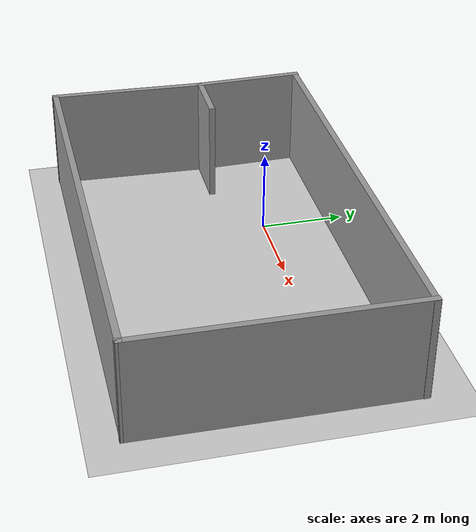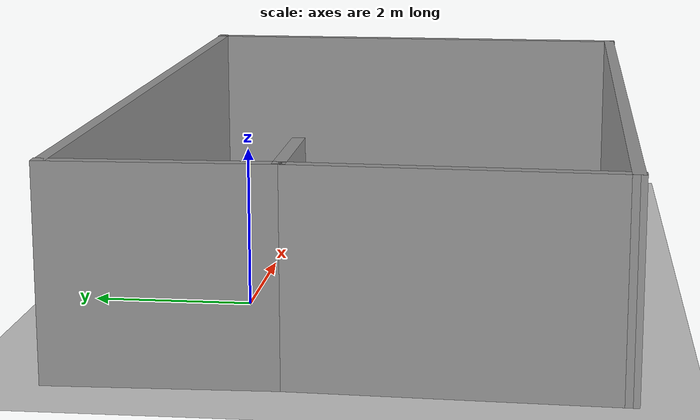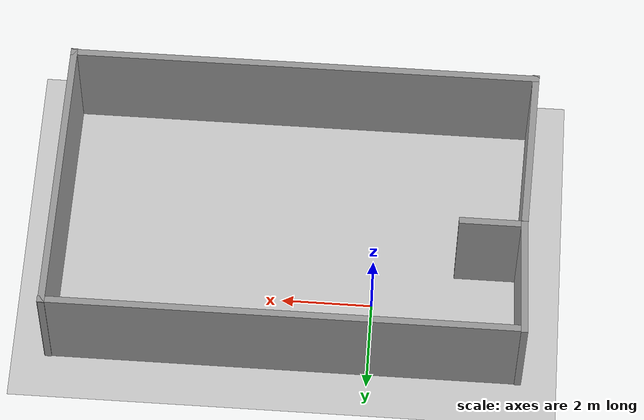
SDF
<sdf version="1.6">
 <world name="default">
  <light name="sun" type="directional">
   <pose>0 0 10 0 -0 0</pose>
   <diffuse>0.8 0.8 0.8 1</diffuse>
   <specular>0.2 0.2 0.2 1</specular>
   <attenuation>
    <range>1000</range>
    <constant>0.9</constant>
    <linear>0.01</linear>
    <quadratic>0.001</quadratic>
   </attenuation>
   <direction>-0.5 0.1 -0.9</direction>
  </light>
  <model name="ground_plane">
   <static>1</static>
   <link name="link">
    <collision name="collision">
     <geometry><plane><normal>0 0 1</normal><size>100 100</size></plane></geometry>
     <surface>
      <contact><collide_bitmask>65535</collide_bitmask></contact>
      <friction><ode><mu>100</mu><mu2>50</mu2></ode></friction>
     </surface>
    </collision>
    <visual name="visual">
     <cast_shadows>0</cast_shadows>
     <geometry><plane><normal>0 0 1</normal><size>100 100</size></plane></geometry>
     <material>
      <script><uri>file://media/materials/scripts/gazebo.material</uri><name>Gazebo/Grey</name></script>
     </material>
    </visual>
   </link>
  </model>
  <gravity>0 0 -9.8</gravity>
  <magnetic_field>6e-06 2.3e-05 -4.2e-05</magnetic_field>
  <atmosphere type="adiabatic"/>
  <physics name="default_physics" default="0" type="ode">
   <max_step_size>0.001</max_step_size>
   <real_time_factor>1</real_time_factor>
   <real_time_update_rate>1000</real_time_update_rate>
  </physics>
  <scene><ambient>0.4 0.4 0.4 1</ambient><background>0.7 0.7 0.7 1</background><shadows>1</shadows></scene>
  <spherical_coordinates>
   <surface_model>EARTH_WGS84</surface_model>
   <latitude_deg>0</latitude_deg>
   <longitude_deg>0</longitude_deg>
   <elevation>0</elevation>
   <heading_deg>0</heading_deg>
  </spherical_coordinates>
  <model name="simpleworld">
   <pose>1.84452 -1.50343 0 0 -0 0</pose>
   <link name="Wall_0">
    <collision name="Wall_0_Collision">
     <geometry><box><size>3.91103 0.15 2.5</size></box></geometry>
     <pose>0 0 1.25 0 -0 0</pose>
    </collision>
    <visual name="Wall_0_Visual">
     <pose>0 0 1.25 0 -0 0</pose>
     <geometry><box><size>3.91103 0.15 2.5</size></box></geometry>
     <material>
      <script><uri>file://media/materials/scripts/gazebo.material</uri><name>Gazebo/Grey</name></script>
      <ambient>1 1 1 1</ambient>
     </material>
     <meta><layer>0</layer></meta>
    </visual>
    <pose>-5.14064 -1.28592 0 0 0 -1.60597</pose>
   </link>
   <link name="Wall_1">
    <collision name="Wall_1_Collision">
     <geometry><box><size>10.5 0.15 2.5</size></box></geometry>
     <pose>0 0 1.25 0 -0 0</pose>
    </collision>
    <visual name="Wall_1_Visual">
     <pose>0 0 1.25 0 -0 0</pose>
     <geometry><box><size>10.5 0.15 2.5</size></box></geometry>
     <material>
      <script><uri>file://media/materials/scripts/gazebo.material</uri><name>Gazebo/Grey</name></script>
      <ambient>1 1 1 1</ambient>
     </material>
     <meta><layer>0</layer></meta>
    </visual>
    <pose>-0.031767 -3.15205 0 0 -0 0</pose>
   </link>
   <link name="Wall_2">
    <collision name="Wall_2_Collision">
     <geometry><box><size>6.4817 0.15 2.5</size></box></geometry>
     <pose>0 0 1.25 0 -0 0</pose>
    </collision>
    <visual name="Wall_2_Visual">
     <pose>0 0 1.25 0 -0 0</pose>
     <geometry><box><size>6.4817 0.15 2.5</size></box></geometry>
     <material>
      <script><uri>file://media/materials/scripts/gazebo.material</uri><name>Gazebo/Grey</name></script>
      <ambient>1 1 1 1</ambient>
     </material>
     <meta><layer>0</layer></meta>
    </visual>
    <pose>5.16968 0.000327 0 0 -0 1.56244</pose>
   </link>
   <link name="Wall_3">
    <collision name="Wall_3_Collision">
     <geometry><box><size>10.5 0.15 2.5</size></box></geometry>
     <pose>0 0 1.25 0 -0 0</pose>
    </collision>
    <visual name="Wall_3_Visual">
     <pose>0 0 1.25 0 -0 0</pose>
     <geometry><box><size>10.5 0.15 2.5</size></box></geometry>
     <material>
      <script><uri>file://media/materials/scripts/gazebo.material</uri><name>Gazebo/Grey</name></script>
      <ambient>1 1 1 1</ambient>
     </material>
     <meta><layer>0</layer></meta>
    </visual>
    <pose>0.034358 3.1527 0 0 -0 3.14159</pose>
   </link>
   <link name="Wall_4">
    <collision name="Wall_4_Collision">
     <geometry><box><size>2.72304 0.15 2.5</size></box></geometry>
     <pose>0 0 1.25 0 -0 0</pose>
    </collision>
    <visual name="Wall_4_Visual">
     <pose>0 0 1.25 0 -0 0</pose>
     <geometry><box><size>2.72304 0.15 2.5</size></box></geometry>
     <material>
      <script><uri>file://media/materials/scripts/gazebo.material</uri><name>Gazebo/Grey</name></script>
      <ambient>1 1 1 1</ambient>
     </material>
     <meta><layer>0</layer></meta>
    </visual>
    <pose>-5.11419 1.87968 0 0 0 -1.53996</pose>
   </link>
   <link name="Wall_5">
    <collision name="Wall_5_Collision">
     <geometry><box><size>1.5 0.15 2.5</size></box></geometry>
     <pose>0 0 1.25 0 -0 0</pose>
    </collision>
    <visual name="Wall_5_Visual">
     <pose>0 0 1.25 0 -0 0</pose>
     <geometry><box><size>1.5 0.15 2.5</size></box></geometry>
     <material>
      <script><uri>file://media/materials/scripts/gazebo.material</uri><name>Gazebo/Grey</name></script>
      <ambient>1 1 1 1</ambient>
     </material>
     <meta><layer>0</layer></meta>
    </visual>
    <pose>-4.39952 0.593427 0 0 -0 0</pose>
   </link>
   <static>1</static>
  </model>
 </world>
</sdf>
